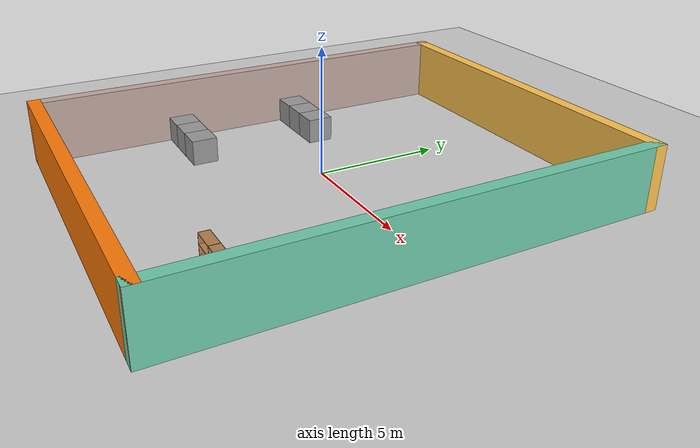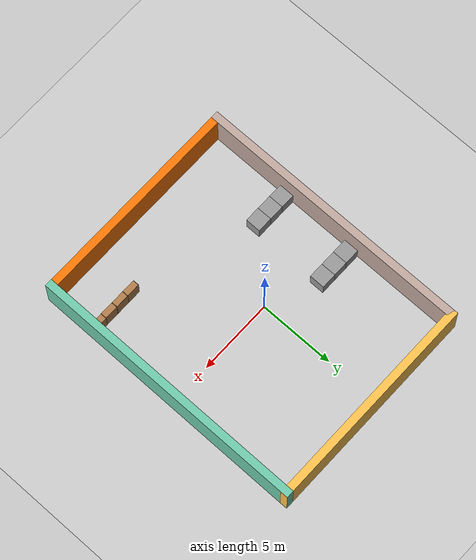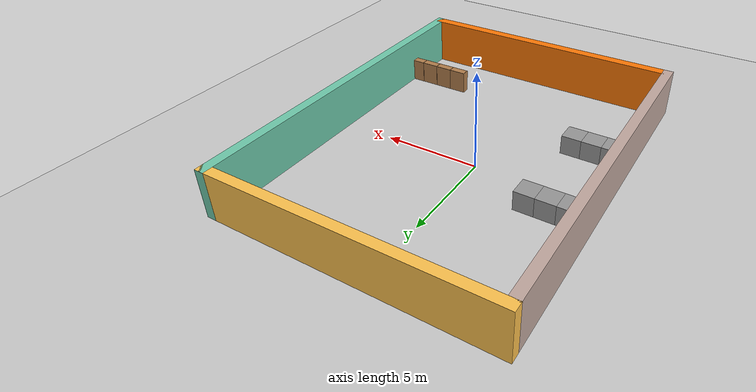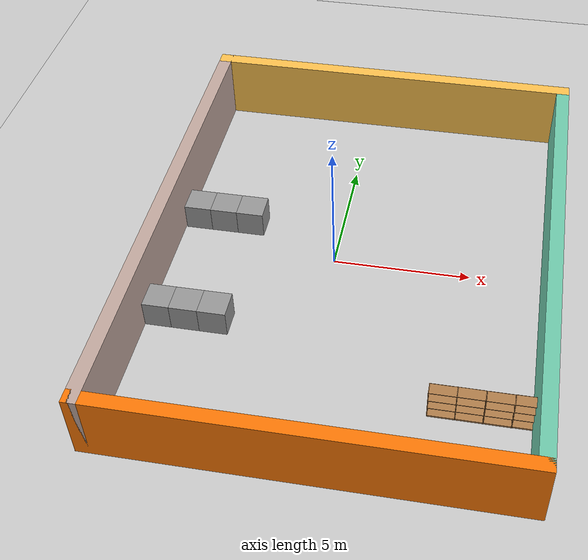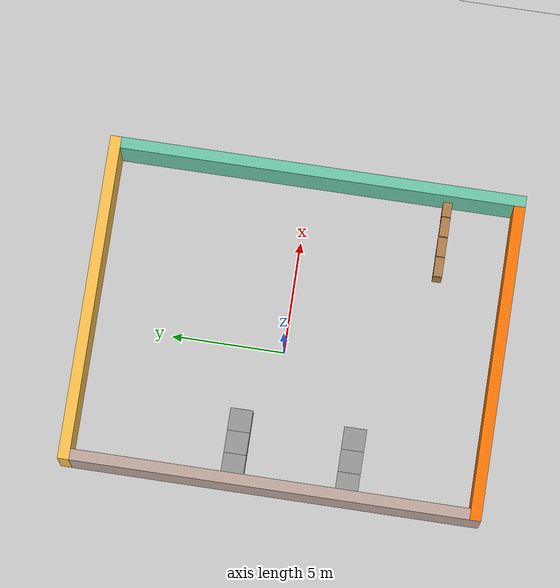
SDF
<sdf version="1.6">
 <world name="default">
  <model name="ground_plane">
   <static>1</static>
   <link name="link">
    <collision name="collision">
     <geometry><plane><normal>0 0 1</normal><size>100 100</size></plane></geometry>
     <surface>
      <contact><collide_bitmask>65535</collide_bitmask></contact>
      <friction><ode><mu>100</mu><mu2>50</mu2></ode></friction>
     </surface>
    </collision>
    <visual name="visual">
     <cast_shadows>0</cast_shadows>
     <geometry><plane><normal>0 0 1</normal><size>100 100</size></plane></geometry>
     <material>
      <script><uri>file://media/materials/scripts/gazebo.material</uri><name>Gazebo/Grey</name></script>
     </material>
    </visual>
   </link>
  </model>
  <model name="thick_wall">
   <link name="Wall_0">
    <pose>0 -9 0 0 -0 0</pose>
    <inertial>
     <mass>100</mass>
     <inertia><ixx>1</ixx><ixy>0</ixy><ixz>0</ixz><iyy>1</iyy><iyz>0</iyz><izz>1</izz></inertia>
    </inertial>
    <visual name="Wall_0_Visual">
     <pose>0 0 1.25 0 -0 0</pose>
     <geometry><box><size>14.5 0.5 2.5</size></box></geometry>
     <material>
      <script><uri>file://media/materials/scripts/gazebo.material</uri><name>Gazebo/Grey</name></script>
      <ambient>0.996 0.475 0.02 1</ambient>
      <shader type="pixel"><normal_map>__default__</normal_map></shader>
      <diffuse>0.7 0.7 0.7 1</diffuse>
      <specular>0.01 0.01 0.01 1</specular>
      <emissive>0 0 0 1</emissive>
     </material>
     <meta><layer>0</layer></meta>
    </visual>
    <collision name="Wall_0_Collision">
     <pose>0 0 1.25 0 -0 0</pose>
     <geometry><box><size>14.5 0.5 2.5</size></box></geometry>
     <surface>
      <friction>
       <ode><mu>1</mu><mu2>1</mu2><fdir1>0 0 0</fdir1><slip1>0</slip1><slip2>0</slip2></ode>
       <torsional>
        <coefficient>1</coefficient>
        <patch_radius>0</patch_radius>
        <surface_radius>0</surface_radius>
        <use_patch_radius>1</use_patch_radius>
        <ode><slip>0</slip></ode>
       </torsional>
      </friction>
      <bounce><restitution_coefficient>0</restitution_coefficient><threshold>1e+06</threshold></bounce>
      <contact>
       <collide_without_contact>0</collide_without_contact>
       <collide_without_contact_bitmask>1</collide_without_contact_bitmask>
       <collide_bitmask>1</collide_bitmask>
       <ode>
        <soft_cfm>0</soft_cfm>
        <soft_erp>0.2</soft_erp>
        <kp>1e+13</kp>
        <kd>1</kd>
        <max_vel>0.01</max_vel>
        <min_depth>0</min_depth>
       </ode>
       <bullet>
        <split_impulse>1</split_impulse>
        <split_impulse_penetration_threshold>-0.01</split_impulse_penetration_threshold>
        <soft_cfm>0</soft_cfm>
        <soft_erp>0.2</soft_erp>
        <kp>1e+13</kp>
        <kd>1</kd>
       </bullet>
      </contact>
     </surface>
    </collision>
   </link>
   <link name="Wall_1">
    <pose>7 0 0 0 -0 1.5708</pose>
    <inertial>
     <mass>100</mass>
     <inertia><ixx>1</ixx><ixy>0</ixy><ixz>0</ixz><iyy>1</iyy><iyz>0</iyz><izz>1</izz></inertia>
    </inertial>
    <visual name="Wall_1_Visual">
     <pose>0 0 1.25 0 -0 0</pose>
     <geometry><box><size>18.5 0.5 2.5</size></box></geometry>
     <material>
      <script><uri>file://media/materials/scripts/gazebo.material</uri><name>Gazebo/Grey</name></script>
      <ambient>0.435 0.796 0.675 1</ambient>
      <shader type="pixel"><normal_map>__default__</normal_map></shader>
      <diffuse>0.7 0.7 0.7 1</diffuse>
      <specular>0.01 0.01 0.01 1</specular>
      <emissive>0 0 0 1</emissive>
     </material>
     <meta><layer>0</layer></meta>
    </visual>
    <collision name="Wall_1_Collision">
     <pose>0 0 1.25 0 -0 0</pose>
     <geometry><box><size>18.5 0.5 2.5</size></box></geometry>
     <surface>
      <friction>
       <ode><mu>1</mu><mu2>1</mu2><fdir1>0 0 0</fdir1><slip1>0</slip1><slip2>0</slip2></ode>
       <torsional>
        <coefficient>1</coefficient>
        <patch_radius>0</patch_radius>
        <surface_radius>0</surface_radius>
        <use_patch_radius>1</use_patch_radius>
        <ode><slip>0</slip></ode>
       </torsional>
      </friction>
      <bounce><restitution_coefficient>0</restitution_coefficient><threshold>1e+06</threshold></bounce>
      <contact>
       <collide_without_contact>0</collide_without_contact>
       <collide_without_contact_bitmask>1</collide_without_contact_bitmask>
       <collide_bitmask>1</collide_bitmask>
       <ode>
        <soft_cfm>0</soft_cfm>
        <soft_erp>0.2</soft_erp>
        <kp>1e+13</kp>
        <kd>1</kd>
        <max_vel>0.01</max_vel>
        <min_depth>0</min_depth>
       </ode>
       <bullet>
        <split_impulse>1</split_impulse>
        <split_impulse_penetration_threshold>-0.01</split_impulse_penetration_threshold>
        <soft_cfm>0</soft_cfm>
        <soft_erp>0.2</soft_erp>
        <kp>1e+13</kp>
        <kd>1</kd>
       </bullet>
      </contact>
     </surface>
    </collision>
   </link>
   <link name="Wall_2">
    <pose>0 9 0 0 -0 3.14159</pose>
    <inertial>
     <mass>100</mass>
     <inertia><ixx>1</ixx><ixy>0</ixy><ixz>0</ixz><iyy>1</iyy><iyz>0</iyz><izz>1</izz></inertia>
    </inertial>
    <visual name="Wall_2_Visual">
     <pose>0 0 1.25 0 -0 0</pose>
     <geometry><box><size>14.5 0.5 2.5</size></box></geometry>
     <material>
      <script><uri>file://media/materials/scripts/gazebo.material</uri><name>Gazebo/Grey</name></script>
      <ambient>1 0.765 0.306 1</ambient>
      <shader type="pixel"><normal_map>__default__</normal_map></shader>
      <diffuse>0.7 0.7 0.7 1</diffuse>
      <specular>0.01 0.01 0.01 1</specular>
      <emissive>0 0 0 1</emissive>
     </material>
     <meta><layer>0</layer></meta>
    </visual>
    <collision name="Wall_2_Collision">
     <pose>0 0 1.25 0 -0 0</pose>
     <geometry><box><size>14.5 0.5 2.5</size></box></geometry>
     <surface>
      <friction>
       <ode><mu>1</mu><mu2>1</mu2><fdir1>0 0 0</fdir1><slip1>0</slip1><slip2>0</slip2></ode>
       <torsional>
        <coefficient>1</coefficient>
        <patch_radius>0</patch_radius>
        <surface_radius>0</surface_radius>
        <use_patch_radius>1</use_patch_radius>
        <ode><slip>0</slip></ode>
       </torsional>
      </friction>
      <bounce><restitution_coefficient>0</restitution_coefficient><threshold>1e+06</threshold></bounce>
      <contact>
       <collide_without_contact>0</collide_without_contact>
       <collide_without_contact_bitmask>1</collide_without_contact_bitmask>
       <collide_bitmask>1</collide_bitmask>
       <ode>
        <soft_cfm>0</soft_cfm>
        <soft_erp>0.2</soft_erp>
        <kp>1e+13</kp>
        <kd>1</kd>
        <max_vel>0.01</max_vel>
        <min_depth>0</min_depth>
       </ode>
       <bullet>
        <split_impulse>1</split_impulse>
        <split_impulse_penetration_threshold>-0.01</split_impulse_penetration_threshold>
        <soft_cfm>0</soft_cfm>
        <soft_erp>0.2</soft_erp>
        <kp>1e+13</kp>
        <kd>1</kd>
       </bullet>
      </contact>
     </surface>
    </collision>
   </link>
   <link name="Wall_3">
    <pose>-7 0 0 0 0 -1.5708</pose>
    <inertial>
     <mass>100</mass>
     <inertia><ixx>1</ixx><ixy>0</ixy><ixz>0</ixz><iyy>1</iyy><iyz>0</iyz><izz>1</izz></inertia>
    </inertial>
    <visual name="Wall_3_Visual">
     <pose>0 0 1.25 0 -0 0</pose>
     <geometry><box><size>18.5 0.5 2.5</size></box></geometry>
     <material>
      <script><uri>file://media/materials/scripts/gazebo.material</uri><name>Gazebo/Grey</name></script>
      <ambient>0.761 0.663 0.627 1</ambient>
      <shader type="pixel"><normal_map>__default__</normal_map></shader>
      <diffuse>0.7 0.7 0.7 1</diffuse>
      <specular>0.01 0.01 0.01 1</specular>
      <emissive>0 0 0 1</emissive>
     </material>
     <meta><layer>0</layer></meta>
    </visual>
    <collision name="Wall_3_Collision">
     <pose>0 0 1.25 0 -0 0</pose>
     <geometry><box><size>18.5 0.5 2.5</size></box></geometry>
     <surface>
      <friction>
       <ode><mu>1</mu><mu2>1</mu2><fdir1>0 0 0</fdir1><slip1>0</slip1><slip2>0</slip2></ode>
       <torsional>
        <coefficient>1</coefficient>
        <patch_radius>0</patch_radius>
        <surface_radius>0</surface_radius>
        <use_patch_radius>1</use_patch_radius>
        <ode><slip>0</slip></ode>
       </torsional>
      </friction>
      <bounce><restitution_coefficient>0</restitution_coefficient><threshold>1e+06</threshold></bounce>
      <contact>
       <collide_without_contact>0</collide_without_contact>
       <collide_without_contact_bitmask>1</collide_without_contact_bitmask>
       <collide_bitmask>1</collide_bitmask>
       <ode>
        <soft_cfm>0</soft_cfm>
        <soft_erp>0.2</soft_erp>
        <kp>1e+13</kp>
        <kd>1</kd>
        <max_vel>0.01</max_vel>
        <min_depth>0</min_depth>
       </ode>
       <bullet>
        <split_impulse>1</split_impulse>
        <split_impulse_penetration_threshold>-0.01</split_impulse_penetration_threshold>
        <soft_cfm>0</soft_cfm>
        <soft_erp>0.2</soft_erp>
        <kp>1e+13</kp>
        <kd>1</kd>
       </bullet>
      </contact>
     </surface>
    </collision>
   </link>
   <static>1</static>
   <pose>0.816557 -0.3056 0 0 -0 0</pose>
  </model>
  <model name="shelf_clone_0">
   <model name="bookshelf">
    <static>1</static>
    <link name="link">
     <inertial><mass>1</mass></inertial>
     <collision name="back">
      <pose>0 0.005 0.6 0 -0 0</pose>
      <geometry><box><size>0.9 0.01 1.2</size></box></geometry>
     </collision>
     <visual name="visual1">
      <pose>0 0.005 0.6 0 -0 0</pose>
      <geometry><box><size>0.9 0.01 1.2</size></box></geometry>
      <material>
       <script><uri>file://media/materials/scripts/gazebo.material</uri><name>Gazebo/Wood</name></script>
      </material>
     </visual>
     <collision name="left_side">
      <pose>0.45 -0.195 0.6 0 -0 0</pose>
      <geometry><box><size>0.02 0.4 1.2</size></box></geometry>
     </collision>
     <visual name="visual2">
      <pose>0.45 -0.195 0.6 0 -0 0</pose>
      <geometry><box><size>0.02 0.4 1.2</size></box></geometry>
      <material>
       <script><uri>file://media/materials/scripts/gazebo.material</uri><name>Gazebo/Wood</name></script>
      </material>
     </visual>
     <collision name="right_side">
      <pose>-0.45 -0.195 0.6 0 -0 0</pose>
      <geometry><box><size>0.02 0.4 1.2</size></box></geometry>
     </collision>
     <visual name="visual3">
      <pose>-0.45 -0.195 0.6 0 -0 0</pose>
      <geometry><box><size>0.02 0.4 1.2</size></box></geometry>
      <material>
       <script><uri>file://media/materials/scripts/gazebo.material</uri><name>Gazebo/Wood</name></script>
      </material>
     </visual>
     <collision name="bottom">
      <pose>0 -0.195 0.03 0 -0 0</pose>
      <geometry><box><size>0.88 0.4 0.06</size></box></geometry>
     </collision>
     <visual name="visual4">
      <pose>0 -0.195 0.03 0 -0 0</pose>
      <geometry><box><size>0.88 0.4 0.06</size></box></geometry>
      <material>
       <script><uri>file://media/materials/scripts/gazebo.material</uri><name>Gazebo/Wood</name></script>
      </material>
     </visual>
     <collision name="top">
      <pose>0 -0.195 1.19 0 -0 0</pose>
      <geometry><box><size>0.88 0.4 0.02</size></box></geometry>
     </collision>
     <visual name="visual5">
      <pose>0 -0.195 1.19 0 -0 0</pose>
      <geometry><box><size>0.88 0.4 0.02</size></box></geometry>
      <material>
       <script><uri>file://media/materials/scripts/gazebo.material</uri><name>Gazebo/Wood</name></script>
      </material>
     </visual>
     <collision name="low_shelf">
      <pose>0 -0.195 0.43 0 -0 0</pose>
      <geometry><box><size>0.88 0.4 0.02</size></box></geometry>
     </collision>
     <visual name="visual6">
      <pose>0 -0.195 0.43 0 -0 0</pose>
      <geometry><box><size>0.88 0.4 0.02</size></box></geometry>
      <material>
       <script><uri>file://media/materials/scripts/gazebo.material</uri><name>Gazebo/Wood</name></script>
      </material>
     </visual>
     <collision name="high_shelf">
      <pose>0 -0.195 0.8 0 -0 0</pose>
      <geometry><box><size>0.88 0.4 0.02</size></box></geometry>
     </collision>
     <visual name="visual7">
      <pose>0 -0.195 0.8 0 -0 0</pose>
      <geometry><box><size>0.88 0.4 0.02</size></box></geometry>
      <material>
       <script><uri>file://media/materials/scripts/gazebo.material</uri><name>Gazebo/Wood</name></script>
      </material>
     </visual>
    </link>
    <pose>-1.36031 -0.003398 0 0 -0 0</pose>
   </model>
   <model name="bookshelf_clone">
    <static>1</static>
    <link name="link">
     <inertial><mass>1</mass></inertial>
     <collision name="back">
      <pose>0 0.005 0.6 0 -0 0</pose>
      <geometry><box><size>0.9 0.01 1.2</size></box></geometry>
     </collision>
     <visual name="visual1">
      <pose>0 0.005 0.6 0 -0 0</pose>
      <geometry><box><size>0.9 0.01 1.2</size></box></geometry>
      <material>
       <script><uri>file://media/materials/scripts/gazebo.material</uri><name>Gazebo/Wood</name></script>
      </material>
     </visual>
     <collision name="left_side">
      <pose>0.45 -0.195 0.6 0 -0 0</pose>
      <geometry><box><size>0.02 0.4 1.2</size></box></geometry>
     </collision>
     <visual name="visual2">
      <pose>0.45 -0.195 0.6 0 -0 0</pose>
      <geometry><box><size>0.02 0.4 1.2</size></box></geometry>
      <material>
       <script><uri>file://media/materials/scripts/gazebo.material</uri><name>Gazebo/Wood</name></script>
      </material>
     </visual>
     <collision name="right_side">
      <pose>-0.45 -0.195 0.6 0 -0 0</pose>
      <geometry><box><size>0.02 0.4 1.2</size></box></geometry>
     </collision>
     <visual name="visual3">
      <pose>-0.45 -0.195 0.6 0 -0 0</pose>
      <geometry><box><size>0.02 0.4 1.2</size></box></geometry>
      <material>
       <script><uri>file://media/materials/scripts/gazebo.material</uri><name>Gazebo/Wood</name></script>
      </material>
     </visual>
     <collision name="bottom">
      <pose>0 -0.195 0.03 0 -0 0</pose>
      <geometry><box><size>0.88 0.4 0.06</size></box></geometry>
     </collision>
     <visual name="visual4">
      <pose>0 -0.195 0.03 0 -0 0</pose>
      <geometry><box><size>0.88 0.4 0.06</size></box></geometry>
      <material>
       <script><uri>file://media/materials/scripts/gazebo.material</uri><name>Gazebo/Wood</name></script>
      </material>
     </visual>
     <collision name="top">
      <pose>0 -0.195 1.19 0 -0 0</pose>
      <geometry><box><size>0.88 0.4 0.02</size></box></geometry>
     </collision>
     <visual name="visual5">
      <pose>0 -0.195 1.19 0 -0 0</pose>
      <geometry><box><size>0.88 0.4 0.02</size></box></geometry>
      <material>
       <script><uri>file://media/materials/scripts/gazebo.material</uri><name>Gazebo/Wood</name></script>
      </material>
     </visual>
     <collision name="low_shelf">
      <pose>0 -0.195 0.43 0 -0 0</pose>
      <geometry><box><size>0.88 0.4 0.02</size></box></geometry>
     </collision>
     <visual name="visual6">
      <pose>0 -0.195 0.43 0 -0 0</pose>
      <geometry><box><size>0.88 0.4 0.02</size></box></geometry>
      <material>
       <script><uri>file://media/materials/scripts/gazebo.material</uri><name>Gazebo/Wood</name></script>
      </material>
     </visual>
     <collision name="high_shelf">
      <pose>0 -0.195 0.8 0 -0 0</pose>
      <geometry><box><size>0.88 0.4 0.02</size></box></geometry>
     </collision>
     <visual name="visual7">
      <pose>0 -0.195 0.8 0 -0 0</pose>
      <geometry><box><size>0.88 0.4 0.02</size></box></geometry>
      <material>
       <script><uri>file://media/materials/scripts/gazebo.material</uri><name>Gazebo/Wood</name></script>
      </material>
     </visual>
    </link>
    <pose>-0.456544 -0.000114 0 0 -0 0</pose>
   </model>
   <model name="bookshelf_clone_clone">
    <static>1</static>
    <link name="link">
     <inertial><mass>1</mass></inertial>
     <collision name="back">
      <pose>0 0.005 0.6 0 -0 0</pose>
      <geometry><box><size>0.9 0.01 1.2</size></box></geometry>
     </collision>
     <visual name="visual1">
      <pose>0 0.005 0.6 0 -0 0</pose>
      <geometry><box><size>0.9 0.01 1.2</size></box></geometry>
      <material>
       <script><uri>file://media/materials/scripts/gazebo.material</uri><name>Gazebo/Wood</name></script>
      </material>
     </visual>
     <collision name="left_side">
      <pose>0.45 -0.195 0.6 0 -0 0</pose>
      <geometry><box><size>0.02 0.4 1.2</size></box></geometry>
     </collision>
     <visual name="visual2">
      <pose>0.45 -0.195 0.6 0 -0 0</pose>
      <geometry><box><size>0.02 0.4 1.2</size></box></geometry>
      <material>
       <script><uri>file://media/materials/scripts/gazebo.material</uri><name>Gazebo/Wood</name></script>
      </material>
     </visual>
     <collision name="right_side">
      <pose>-0.45 -0.195 0.6 0 -0 0</pose>
      <geometry><box><size>0.02 0.4 1.2</size></box></geometry>
     </collision>
     <visual name="visual3">
      <pose>-0.45 -0.195 0.6 0 -0 0</pose>
      <geometry><box><size>0.02 0.4 1.2</size></box></geometry>
      <material>
       <script><uri>file://media/materials/scripts/gazebo.material</uri><name>Gazebo/Wood</name></script>
      </material>
     </visual>
     <collision name="bottom">
      <pose>0 -0.195 0.03 0 -0 0</pose>
      <geometry><box><size>0.88 0.4 0.06</size></box></geometry>
     </collision>
     <visual name="visual4">
      <pose>0 -0.195 0.03 0 -0 0</pose>
      <geometry><box><size>0.88 0.4 0.06</size></box></geometry>
      <material>
       <script><uri>file://media/materials/scripts/gazebo.material</uri><name>Gazebo/Wood</name></script>
      </material>
     </visual>
     <collision name="top">
      <pose>0 -0.195 1.19 0 -0 0</pose>
      <geometry><box><size>0.88 0.4 0.02</size></box></geometry>
     </collision>
     <visual name="visual5">
      <pose>0 -0.195 1.19 0 -0 0</pose>
      <geometry><box><size>0.88 0.4 0.02</size></box></geometry>
      <material>
       <script><uri>file://media/materials/scripts/gazebo.material</uri><name>Gazebo/Wood</name></script>
      </material>
     </visual>
     <collision name="low_shelf">
      <pose>0 -0.195 0.43 0 -0 0</pose>
      <geometry><box><size>0.88 0.4 0.02</size></box></geometry>
     </collision>
     <visual name="visual6">
      <pose>0 -0.195 0.43 0 -0 0</pose>
      <geometry><box><size>0.88 0.4 0.02</size></box></geometry>
      <material>
       <script><uri>file://media/materials/scripts/gazebo.material</uri><name>Gazebo/Wood</name></script>
      </material>
     </visual>
     <collision name="high_shelf">
      <pose>0 -0.195 0.8 0 -0 0</pose>
      <geometry><box><size>0.88 0.4 0.02</size></box></geometry>
     </collision>
     <visual name="visual7">
      <pose>0 -0.195 0.8 0 -0 0</pose>
      <geometry><box><size>0.88 0.4 0.02</size></box></geometry>
      <material>
       <script><uri>file://media/materials/scripts/gazebo.material</uri><name>Gazebo/Wood</name></script>
      </material>
     </visual>
    </link>
    <pose>0.456143 -0.001997 0 0 -0 0</pose>
   </model>
   <model name="bookshelf_clone_clone_0">
    <static>1</static>
    <link name="link">
     <inertial><mass>1</mass></inertial>
     <collision name="back">
      <pose>0 0.005 0.6 0 -0 0</pose>
      <geometry><box><size>0.9 0.01 1.2</size></box></geometry>
     </collision>
     <visual name="visual1">
      <pose>0 0.005 0.6 0 -0 0</pose>
      <geometry><box><size>0.9 0.01 1.2</size></box></geometry>
      <material>
       <script><uri>file://media/materials/scripts/gazebo.material</uri><name>Gazebo/Wood</name></script>
      </material>
     </visual>
     <collision name="left_side">
      <pose>0.45 -0.195 0.6 0 -0 0</pose>
      <geometry><box><size>0.02 0.4 1.2</size></box></geometry>
     </collision>
     <visual name="visual2">
      <pose>0.45 -0.195 0.6 0 -0 0</pose>
      <geometry><box><size>0.02 0.4 1.2</size></box></geometry>
      <material>
       <script><uri>file://media/materials/scripts/gazebo.material</uri><name>Gazebo/Wood</name></script>
      </material>
     </visual>
     <collision name="right_side">
      <pose>-0.45 -0.195 0.6 0 -0 0</pose>
      <geometry><box><size>0.02 0.4 1.2</size></box></geometry>
     </collision>
     <visual name="visual3">
      <pose>-0.45 -0.195 0.6 0 -0 0</pose>
      <geometry><box><size>0.02 0.4 1.2</size></box></geometry>
      <material>
       <script><uri>file://media/materials/scripts/gazebo.material</uri><name>Gazebo/Wood</name></script>
      </material>
     </visual>
     <collision name="bottom">
      <pose>0 -0.195 0.03 0 -0 0</pose>
      <geometry><box><size>0.88 0.4 0.06</size></box></geometry>
     </collision>
     <visual name="visual4">
      <pose>0 -0.195 0.03 0 -0 0</pose>
      <geometry><box><size>0.88 0.4 0.06</size></box></geometry>
      <material>
       <script><uri>file://media/materials/scripts/gazebo.material</uri><name>Gazebo/Wood</name></script>
      </material>
     </visual>
     <collision name="top">
      <pose>0 -0.195 1.19 0 -0 0</pose>
      <geometry><box><size>0.88 0.4 0.02</size></box></geometry>
     </collision>
     <visual name="visual5">
      <pose>0 -0.195 1.19 0 -0 0</pose>
      <geometry><box><size>0.88 0.4 0.02</size></box></geometry>
      <material>
       <script><uri>file://media/materials/scripts/gazebo.material</uri><name>Gazebo/Wood</name></script>
      </material>
     </visual>
     <collision name="low_shelf">
      <pose>0 -0.195 0.43 0 -0 0</pose>
      <geometry><box><size>0.88 0.4 0.02</size></box></geometry>
     </collision>
     <visual name="visual6">
      <pose>0 -0.195 0.43 0 -0 0</pose>
      <geometry><box><size>0.88 0.4 0.02</size></box></geometry>
      <material>
       <script><uri>file://media/materials/scripts/gazebo.material</uri><name>Gazebo/Wood</name></script>
      </material>
     </visual>
     <collision name="high_shelf">
      <pose>0 -0.195 0.8 0 -0 0</pose>
      <geometry><box><size>0.88 0.4 0.02</size></box></geometry>
     </collision>
     <visual name="visual7">
      <pose>0 -0.195 0.8 0 -0 0</pose>
      <geometry><box><size>0.88 0.4 0.02</size></box></geometry>
      <material>
       <script><uri>file://media/materials/scripts/gazebo.material</uri><name>Gazebo/Wood</name></script>
      </material>
     </visual>
    </link>
    <pose>1.3607 0.005513 0 0 -0 0</pose>
   </model>
   <static>0</static>
   <pose>6 -6 0 0 -0 0</pose>
  </model>
  <model name="unit_box_clone_0">
   <link name="link">
    <inertial>
     <mass>10</mass>
     <inertia>
      <ixx>0.166667</ixx>
      <ixy>0</ixy>
      <ixz>0</ixz>
      <iyy>0.166667</iyy>
      <iyz>0</iyz>
      <izz>0.166667</izz>
     </inertia>
    </inertial>
    <visual name="visual">
     <geometry><box><size>1 1 1</size></box></geometry>
     <material>
      <script><name>Gazebo/Grey</name><uri>file://media/materials/scripts/gazebo.material</uri></script>
      <shader type="pixel"><normal_map>__default__</normal_map></shader>
      <ambient>0.3 0.3 0.3 1</ambient>
      <diffuse>0.7 0.7 0.7 1</diffuse>
      <specular>0.01 0.01 0.01 1</specular>
      <emissive>0 0 0 1</emissive>
     </material>
    </visual>
    <collision name="collision">
     <geometry><box><size>1 1 1</size></box></geometry>
     <surface>
      <friction>
       <ode><mu>1</mu><mu2>1</mu2><fdir1>0 0 0</fdir1><slip1>0</slip1><slip2>0</slip2></ode>
       <torsional>
        <coefficient>1</coefficient>
        <patch_radius>0</patch_radius>
        <surface_radius>0</surface_radius>
        <use_patch_radius>1</use_patch_radius>
        <ode><slip>0</slip></ode>
       </torsional>
      </friction>
      <bounce><restitution_coefficient>0</restitution_coefficient><threshold>1e+06</threshold></bounce>
      <contact>
       <collide_without_contact>0</collide_without_contact>
       <collide_without_contact_bitmask>1</collide_without_contact_bitmask>
       <collide_bitmask>1</collide_bitmask>
       <ode>
        <soft_cfm>0</soft_cfm>
        <soft_erp>0.2</soft_erp>
        <kp>1e+13</kp>
        <kd>1</kd>
        <max_vel>0.01</max_vel>
        <min_depth>0</min_depth>
       </ode>
       <bullet>
        <split_impulse>1</split_impulse>
        <split_impulse_penetration_threshold>-0.01</split_impulse_penetration_threshold>
        <soft_cfm>0</soft_cfm>
        <soft_erp>0.2</soft_erp>
        <kp>1e+13</kp>
        <kd>1</kd>
       </bullet>
      </contact>
     </surface>
    </collision>
   </link>
   <link name="link_0">
    <pose>-1 0 0 0 -0 0</pose>
    <inertial>
     <mass>10</mass>
     <inertia>
      <ixx>0.166667</ixx>
      <ixy>0</ixy>
      <ixz>0</ixz>
      <iyy>0.166667</iyy>
      <iyz>0</iyz>
      <izz>0.166667</izz>
     </inertia>
    </inertial>
    <visual name="visual">
     <geometry><box><size>1 1 1</size></box></geometry>
     <material>
      <lighting>1</lighting>
      <script><uri>file://media/materials/scripts/gazebo.material</uri><name>Gazebo/Grey</name></script>
      <shader type="pixel"><normal_map>__default__</normal_map></shader>
      <ambient>0.3 0.3 0.3 1</ambient>
      <diffuse>0.7 0.7 0.7 1</diffuse>
      <specular>0.01 0.01 0.01 1</specular>
      <emissive>0 0 0 1</emissive>
     </material>
    </visual>
    <collision name="collision">
     <geometry><box><size>1 1 1</size></box></geometry>
     <surface>
      <friction>
       <ode><mu>1</mu><mu2>1</mu2><fdir1>0 0 0</fdir1><slip1>0</slip1><slip2>0</slip2></ode>
       <torsional>
        <coefficient>1</coefficient>
        <patch_radius>0</patch_radius>
        <surface_radius>0</surface_radius>
        <use_patch_radius>1</use_patch_radius>
        <ode><slip>0</slip></ode>
       </torsional>
      </friction>
      <bounce><restitution_coefficient>0</restitution_coefficient><threshold>1e+06</threshold></bounce>
      <contact>
       <collide_without_contact>0</collide_without_contact>
       <collide_without_contact_bitmask>1</collide_without_contact_bitmask>
       <collide_bitmask>1</collide_bitmask>
       <ode>
        <soft_cfm>0</soft_cfm>
        <soft_erp>0.2</soft_erp>
        <kp>1e+13</kp>
        <kd>1</kd>
        <max_vel>0.01</max_vel>
        <min_depth>0</min_depth>
       </ode>
       <bullet>
        <split_impulse>1</split_impulse>
        <split_impulse_penetration_threshold>-0.01</split_impulse_penetration_threshold>
        <soft_cfm>0</soft_cfm>
        <soft_erp>0.2</soft_erp>
        <kp>1e+13</kp>
        <kd>1</kd>
       </bullet>
      </contact>
     </surface>
    </collision>
   </link>
   <link name="link_0_clone">
    <pose>-2 0 0 0 -0 0</pose>
    <inertial>
     <mass>10</mass>
     <inertia>
      <ixx>0.166667</ixx>
      <ixy>0</ixy>
      <ixz>0</ixz>
      <iyy>0.166667</iyy>
      <iyz>0</iyz>
      <izz>0.166667</izz>
     </inertia>
    </inertial>
    <visual name="visual">
     <geometry><box><size>1 1 1</size></box></geometry>
     <material>
      <lighting>1</lighting>
      <script><uri>file://media/materials/scripts/gazebo.material</uri><name>Gazebo/Grey</name></script>
      <shader type="pixel"><normal_map>__default__</normal_map></shader>
      <ambient>0.3 0.3 0.3 1</ambient>
      <diffuse>0.7 0.7 0.7 1</diffuse>
      <specular>0.01 0.01 0.01 1</specular>
      <emissive>0 0 0 1</emissive>
     </material>
    </visual>
    <collision name="collision">
     <geometry><box><size>1 1 1</size></box></geometry>
     <surface>
      <friction>
       <ode><mu>1</mu><mu2>1</mu2><fdir1>0 0 0</fdir1><slip1>0</slip1><slip2>0</slip2></ode>
       <torsional>
        <coefficient>1</coefficient>
        <patch_radius>0</patch_radius>
        <surface_radius>0</surface_radius>
        <use_patch_radius>1</use_patch_radius>
        <ode><slip>0</slip></ode>
       </torsional>
      </friction>
      <bounce><restitution_coefficient>0</restitution_coefficient><threshold>1e+06</threshold></bounce>
      <contact>
       <collide_without_contact>0</collide_without_contact>
       <collide_without_contact_bitmask>1</collide_without_contact_bitmask>
       <collide_bitmask>1</collide_bitmask>
       <ode>
        <soft_cfm>0</soft_cfm>
        <soft_erp>0.2</soft_erp>
        <kp>1e+13</kp>
        <kd>1</kd>
        <max_vel>0.01</max_vel>
        <min_depth>0</min_depth>
       </ode>
       <bullet>
        <split_impulse>1</split_impulse>
        <split_impulse_penetration_threshold>-0.01</split_impulse_penetration_threshold>
        <soft_cfm>0</soft_cfm>
        <soft_erp>0.2</soft_erp>
        <kp>1e+13</kp>
        <kd>1</kd>
       </bullet>
      </contact>
     </surface>
    </collision>
   </link>
   <joint name="link_0_JOINT_2" type="fixed">
    <parent>link_0</parent>
    <child>link_0_clone</child>
    <physics>
     <ode><limit><cfm>0</cfm><erp>0.2</erp></limit><suspension><cfm>0</cfm><erp>0.2</erp></suspension></ode>
    </physics>
   </joint>
   <joint name="link_JOINT_0" type="fixed">
    <parent>link</parent>
    <child>link_0</child>
    <physics>
     <ode><limit><cfm>0</cfm><erp>0.2</erp></limit><suspension><cfm>0</cfm><erp>0.2</erp></suspension></ode>
    </physics>
   </joint>
   <static>1</static>
   <pose>-3.39826 1.42829 0.5 0 -0 0</pose>
  </model>
  <model name="unit_box_clone_1">
   <link name="link">
    <inertial>
     <mass>10</mass>
     <inertia>
      <ixx>0.166667</ixx>
      <ixy>0</ixy>
      <ixz>0</ixz>
      <iyy>0.166667</iyy>
      <iyz>0</iyz>
      <izz>0.166667</izz>
     </inertia>
    </inertial>
    <visual name="visual">
     <geometry><box><size>1 1 1</size></box></geometry>
     <material>
      <script><name>Gazebo/Grey</name><uri>file://media/materials/scripts/gazebo.material</uri></script>
      <shader type="pixel"><normal_map>__default__</normal_map></shader>
      <ambient>0.3 0.3 0.3 1</ambient>
      <diffuse>0.7 0.7 0.7 1</diffuse>
      <specular>0.01 0.01 0.01 1</specular>
      <emissive>0 0 0 1</emissive>
     </material>
    </visual>
    <collision name="collision">
     <geometry><box><size>1 1 1</size></box></geometry>
     <surface>
      <friction>
       <ode><mu>1</mu><mu2>1</mu2><fdir1>0 0 0</fdir1><slip1>0</slip1><slip2>0</slip2></ode>
       <torsional>
        <coefficient>1</coefficient>
        <patch_radius>0</patch_radius>
        <surface_radius>0</surface_radius>
        <use_patch_radius>1</use_patch_radius>
        <ode><slip>0</slip></ode>
       </torsional>
      </friction>
      <bounce><restitution_coefficient>0</restitution_coefficient><threshold>1e+06</threshold></bounce>
      <contact>
       <collide_without_contact>0</collide_without_contact>
       <collide_without_contact_bitmask>1</collide_without_contact_bitmask>
       <collide_bitmask>1</collide_bitmask>
       <ode>
        <soft_cfm>0</soft_cfm>
        <soft_erp>0.2</soft_erp>
        <kp>1e+13</kp>
        <kd>1</kd>
        <max_vel>0.01</max_vel>
        <min_depth>0</min_depth>
       </ode>
       <bullet>
        <split_impulse>1</split_impulse>
        <split_impulse_penetration_threshold>-0.01</split_impulse_penetration_threshold>
        <soft_cfm>0</soft_cfm>
        <soft_erp>0.2</soft_erp>
        <kp>1e+13</kp>
        <kd>1</kd>
       </bullet>
      </contact>
     </surface>
    </collision>
   </link>
   <link name="link_0">
    <pose>-1 0 0 0 -0 0</pose>
    <inertial>
     <mass>10</mass>
     <inertia>
      <ixx>0.166667</ixx>
      <ixy>0</ixy>
      <ixz>0</ixz>
      <iyy>0.166667</iyy>
      <iyz>0</iyz>
      <izz>0.166667</izz>
     </inertia>
    </inertial>
    <visual name="visual">
     <geometry><box><size>1 1 1</size></box></geometry>
     <material>
      <lighting>1</lighting>
      <script><uri>file://media/materials/scripts/gazebo.material</uri><name>Gazebo/Grey</name></script>
      <shader type="pixel"><normal_map>__default__</normal_map></shader>
      <ambient>0.3 0.3 0.3 1</ambient>
      <diffuse>0.7 0.7 0.7 1</diffuse>
      <specular>0.01 0.01 0.01 1</specular>
      <emissive>0 0 0 1</emissive>
     </material>
    </visual>
    <collision name="collision">
     <geometry><box><size>1 1 1</size></box></geometry>
     <surface>
      <friction>
       <ode><mu>1</mu><mu2>1</mu2><fdir1>0 0 0</fdir1><slip1>0</slip1><slip2>0</slip2></ode>
       <torsional>
        <coefficient>1</coefficient>
        <patch_radius>0</patch_radius>
        <surface_radius>0</surface_radius>
        <use_patch_radius>1</use_patch_radius>
        <ode><slip>0</slip></ode>
       </torsional>
      </friction>
      <bounce><restitution_coefficient>0</restitution_coefficient><threshold>1e+06</threshold></bounce>
      <contact>
       <collide_without_contact>0</collide_without_contact>
       <collide_without_contact_bitmask>1</collide_without_contact_bitmask>
       <collide_bitmask>1</collide_bitmask>
       <ode>
        <soft_cfm>0</soft_cfm>
        <soft_erp>0.2</soft_erp>
        <kp>1e+13</kp>
        <kd>1</kd>
        <max_vel>0.01</max_vel>
        <min_depth>0</min_depth>
       </ode>
       <bullet>
        <split_impulse>1</split_impulse>
        <split_impulse_penetration_threshold>-0.01</split_impulse_penetration_threshold>
        <soft_cfm>0</soft_cfm>
        <soft_erp>0.2</soft_erp>
        <kp>1e+13</kp>
        <kd>1</kd>
       </bullet>
      </contact>
     </surface>
    </collision>
   </link>
   <link name="link_0_clone">
    <pose>-2 0 0 0 -0 0</pose>
    <inertial>
     <mass>10</mass>
     <inertia>
      <ixx>0.166667</ixx>
      <ixy>0</ixy>
      <ixz>0</ixz>
      <iyy>0.166667</iyy>
      <iyz>0</iyz>
      <izz>0.166667</izz>
     </inertia>
    </inertial>
    <visual name="visual">
     <geometry><box><size>1 1 1</size></box></geometry>
     <material>
      <lighting>1</lighting>
      <script><uri>file://media/materials/scripts/gazebo.material</uri><name>Gazebo/Grey</name></script>
      <shader type="pixel"><normal_map>__default__</normal_map></shader>
      <ambient>0.3 0.3 0.3 1</ambient>
      <diffuse>0.7 0.7 0.7 1</diffuse>
      <specular>0.01 0.01 0.01 1</specular>
      <emissive>0 0 0 1</emissive>
     </material>
    </visual>
    <collision name="collision">
     <geometry><box><size>1 1 1</size></box></geometry>
     <surface>
      <friction>
       <ode><mu>1</mu><mu2>1</mu2><fdir1>0 0 0</fdir1><slip1>0</slip1><slip2>0</slip2></ode>
       <torsional>
        <coefficient>1</coefficient>
        <patch_radius>0</patch_radius>
        <surface_radius>0</surface_radius>
        <use_patch_radius>1</use_patch_radius>
        <ode><slip>0</slip></ode>
       </torsional>
      </friction>
      <bounce><restitution_coefficient>0</restitution_coefficient><threshold>1e+06</threshold></bounce>
      <contact>
       <collide_without_contact>0</collide_without_contact>
       <collide_without_contact_bitmask>1</collide_without_contact_bitmask>
       <collide_bitmask>1</collide_bitmask>
       <ode>
        <soft_cfm>0</soft_cfm>
        <soft_erp>0.2</soft_erp>
        <kp>1e+13</kp>
        <kd>1</kd>
        <max_vel>0.01</max_vel>
        <min_depth>0</min_depth>
       </ode>
       <bullet>
        <split_impulse>1</split_impulse>
        <split_impulse_penetration_threshold>-0.01</split_impulse_penetration_threshold>
        <soft_cfm>0</soft_cfm>
        <soft_erp>0.2</soft_erp>
        <kp>1e+13</kp>
        <kd>1</kd>
       </bullet>
      </contact>
     </surface>
    </collision>
   </link>
   <joint name="link_0_JOINT_2" type="fixed">
    <parent>link_0</parent>
    <child>link_0_clone</child>
    <physics>
     <ode><limit><cfm>0</cfm><erp>0.2</erp></limit><suspension><cfm>0</cfm><erp>0.2</erp></suspension></ode>
    </physics>
   </joint>
   <joint name="link_JOINT_0" type="fixed">
    <parent>link</parent>
    <child>link_0</child>
    <physics>
     <ode><limit><cfm>0</cfm><erp>0.2</erp></limit><suspension><cfm>0</cfm><erp>0.2</erp></suspension></ode>
    </physics>
   </joint>
   <static>1</static>
   <pose>-3.48941 -3.62396 0.5 0 -0 0</pose>
  </model>
 </world>
</sdf>
